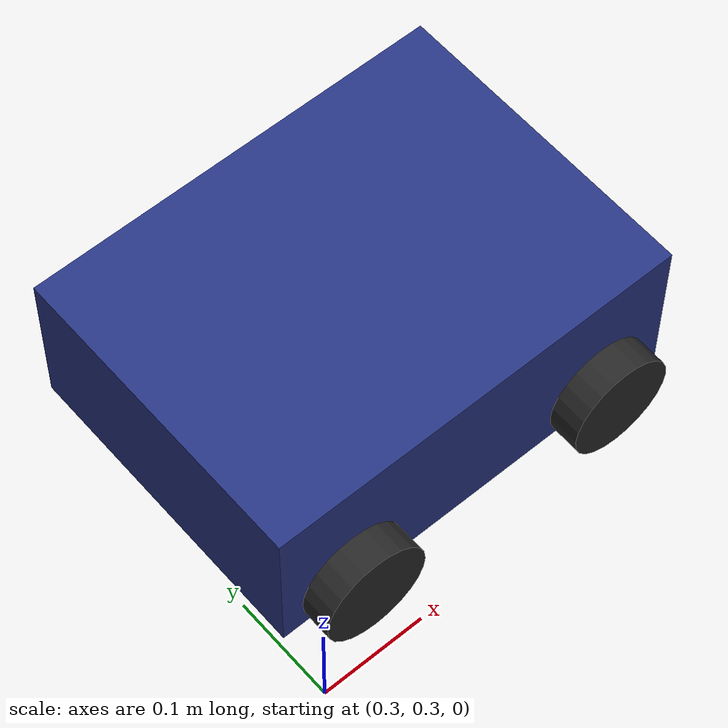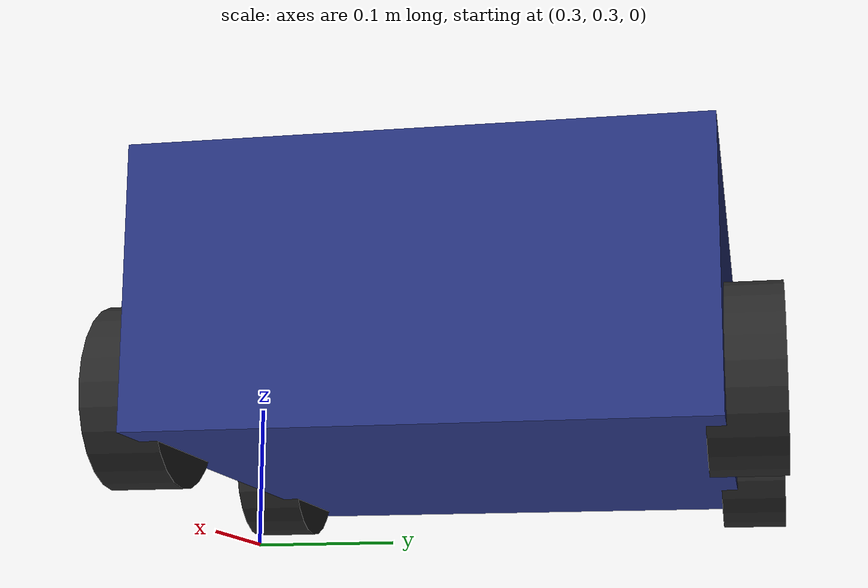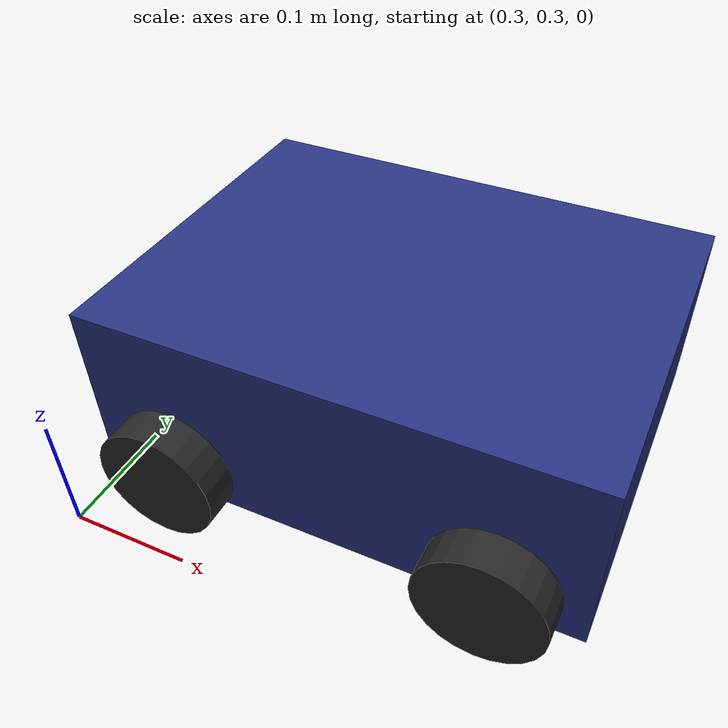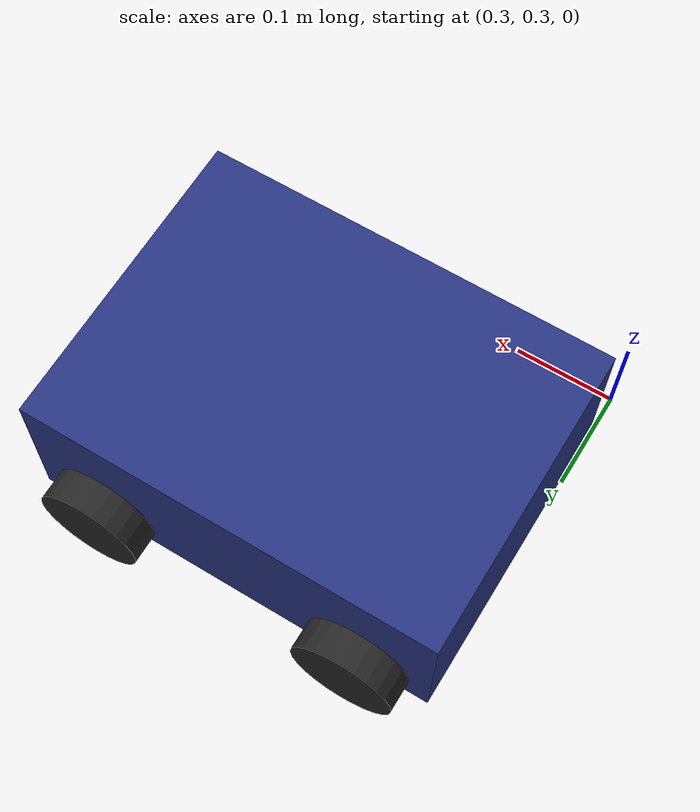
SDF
<?xml version="1.0"?>
<!-- Gazebo-side model for the pathfinder diff-drive car.
     Carries the DiffDrive plugin (cmd_vel -> wheel velocities).
     ROS-side TF/visualization is driven by urdf/car.urdf. -->
<sdf version="1.9">
  <model name="pathfinder_car">
    <!-- z = ground_top (0) + wheel_radius (0.05) - wheel_z_in_base (-0.045) = 0.095
         so the wheels rest cleanly on the ground from t=0 with no settling. -->
    <pose>0.5 0.5 0.095 0 0 0</pose>

    <link name="base_link">
      <inertial>
        <mass>2.0</mass>
        <inertia>
          <ixx>0.01875</ixx>
          <iyy>0.030416666666666668</iyy>
          <izz>0.041666666666666664</izz>
          <ixy>0</ixy>
          <ixz>0</ixz>
          <iyz>0</iyz>
        </inertia>
      </inertial>
      <visual name="base_visual">
        <geometry>
          <box>
            <size>0.40 0.30 0.15</size>
          </box>
        </geometry>
        <material>
          <ambient>0.1 0.15 0.4 1</ambient>
          <diffuse>0.15 0.2 0.5 1</diffuse>
          <specular>0.1 0.15 0.4 1</specular>
        </material>
      </visual>
      <collision name="base_collision">
        <geometry>
          <box>
            <size>0.40 0.30 0.15</size>
          </box>
        </geometry>
      </collision>
    </link>

    <link name="wheel_fl">
      <pose>0.13 0.16 -0.045 0 0 0</pose>
      <inertial>
        <mass>0.1</mass>
        <inertia>
          <ixx>0.00012500000000000003</ixx>
          <iyy>7.583333333333335e-05</iyy>
          <izz>7.583333333333335e-05</izz>
          <ixy>0</ixy>
          <ixz>0</ixz>
          <iyz>0</iyz>
        </inertia>
      </inertial>
      <visual name="wheel_fl_visual">
        <pose>0 0 0 1.5707963267948966 0 0</pose>
        <geometry>
          <cylinder>
            <radius>0.05</radius>
            <length>0.04</length>
          </cylinder>
        </geometry>
        <material>
          <ambient>0.15 0.15 0.15 1</ambient>
          <diffuse>0.15 0.15 0.15 1</diffuse>
        </material>
      </visual>
      <collision name="wheel_fl_collision">
        <pose>0 0 0 1.5707963267948966 0 0</pose>
        <geometry>
          <cylinder>
            <radius>0.05</radius>
            <length>0.04</length>
          </cylinder>
        </geometry>
        <surface>
          <friction>
            <ode>
              <mu>0.6</mu>
              <mu2>0.05</mu2>
            </ode>
          </friction>
        </surface>
      </collision>
    </link>

    <link name="wheel_fr">
      <pose>0.13 -0.16 -0.045 0 0 0</pose>
      <inertial>
        <mass>0.1</mass>
        <inertia>
          <ixx>0.00012500000000000003</ixx>
          <iyy>7.583333333333335e-05</iyy>
          <izz>7.583333333333335e-05</izz>
          <ixy>0</ixy>
          <ixz>0</ixz>
          <iyz>0</iyz>
        </inertia>
      </inertial>
      <visual name="wheel_fr_visual">
        <pose>0 0 0 1.5707963267948966 0 0</pose>
        <geometry>
          <cylinder>
            <radius>0.05</radius>
            <length>0.04</length>
          </cylinder>
        </geometry>
        <material>
          <ambient>0.15 0.15 0.15 1</ambient>
          <diffuse>0.15 0.15 0.15 1</diffuse>
        </material>
      </visual>
      <collision name="wheel_fr_collision">
        <pose>0 0 0 1.5707963267948966 0 0</pose>
        <geometry>
          <cylinder>
            <radius>0.05</radius>
            <length>0.04</length>
          </cylinder>
        </geometry>
        <surface>
          <friction>
            <ode>
              <mu>0.6</mu>
              <mu2>0.05</mu2>
            </ode>
          </friction>
        </surface>
      </collision>
    </link>

    <link name="wheel_rl">
      <pose>-0.13 0.16 -0.045 0 0 0</pose>
      <inertial>
        <mass>0.1</mass>
        <inertia>
          <ixx>0.00012500000000000003</ixx>
          <iyy>7.583333333333335e-05</iyy>
          <izz>7.583333333333335e-05</izz>
          <ixy>0</ixy>
          <ixz>0</ixz>
          <iyz>0</iyz>
        </inertia>
      </inertial>
      <visual name="wheel_rl_visual">
        <pose>0 0 0 1.5707963267948966 0 0</pose>
        <geometry>
          <cylinder>
            <radius>0.05</radius>
            <length>0.04</length>
          </cylinder>
        </geometry>
        <material>
          <ambient>0.15 0.15 0.15 1</ambient>
          <diffuse>0.15 0.15 0.15 1</diffuse>
        </material>
      </visual>
      <collision name="wheel_rl_collision">
        <pose>0 0 0 1.5707963267948966 0 0</pose>
        <geometry>
          <cylinder>
            <radius>0.05</radius>
            <length>0.04</length>
          </cylinder>
        </geometry>
        <surface>
          <friction>
            <ode>
              <mu>1.2</mu>
              <mu2>1.2</mu2>
            </ode>
          </friction>
        </surface>
      </collision>
    </link>

    <link name="wheel_rr">
      <pose>-0.13 -0.16 -0.045 0 0 0</pose>
      <inertial>
        <mass>0.1</mass>
        <inertia>
          <ixx>0.00012500000000000003</ixx>
          <iyy>7.583333333333335e-05</iyy>
          <izz>7.583333333333335e-05</izz>
          <ixy>0</ixy>
          <ixz>0</ixz>
          <iyz>0</iyz>
        </inertia>
      </inertial>
      <visual name="wheel_rr_visual">
        <pose>0 0 0 1.5707963267948966 0 0</pose>
        <geometry>
          <cylinder>
            <radius>0.05</radius>
            <length>0.04</length>
          </cylinder>
        </geometry>
        <material>
          <ambient>0.15 0.15 0.15 1</ambient>
          <diffuse>0.15 0.15 0.15 1</diffuse>
        </material>
      </visual>
      <collision name="wheel_rr_collision">
        <pose>0 0 0 1.5707963267948966 0 0</pose>
        <geometry>
          <cylinder>
            <radius>0.05</radius>
            <length>0.04</length>
          </cylinder>
        </geometry>
        <surface>
          <friction>
            <ode>
              <mu>1.2</mu>
              <mu2>1.2</mu2>
            </ode>
          </friction>
        </surface>
      </collision>
    </link>

    <joint name="fl_wheel_joint" type="revolute">
      <parent>base_link</parent>
      <child>wheel_fl</child>
      <axis>
        <xyz>0 1 0</xyz>
        <limit>
          <lower>-1e16</lower>
          <upper>1e16</upper>
        </limit>
        <dynamics>
          <damping>0.005</damping>
        </dynamics>
      </axis>
    </joint>

    <joint name="fr_wheel_joint" type="revolute">
      <parent>base_link</parent>
      <child>wheel_fr</child>
      <axis>
        <xyz>0 1 0</xyz>
        <limit>
          <lower>-1e16</lower>
          <upper>1e16</upper>
        </limit>
        <dynamics>
          <damping>0.005</damping>
        </dynamics>
      </axis>
    </joint>

    <joint name="rl_wheel_joint" type="revolute">
      <parent>base_link</parent>
      <child>wheel_rl</child>
      <axis>
        <xyz>0 1 0</xyz>
        <limit>
          <lower>-1e16</lower>
          <upper>1e16</upper>
        </limit>
        <dynamics>
          <damping>0.005</damping>
        </dynamics>
      </axis>
    </joint>

    <joint name="rr_wheel_joint" type="revolute">
      <parent>base_link</parent>
      <child>wheel_rr</child>
      <axis>
        <xyz>0 1 0</xyz>
        <limit>
          <lower>-1e16</lower>
          <upper>1e16</upper>
        </limit>
        <dynamics>
          <damping>0.005</damping>
        </dynamics>
      </axis>
    </joint>

    <!-- cmd_vel (gz.msgs.Twist) -> wheel velocities. Topic remapped to /cmd_vel.
         Diff-drive runs on the rear wheels; the low-mu2 fronts coast and steer. -->
    <plugin filename="gz-sim-diff-drive-system"
            name="gz::sim::systems::DiffDrive">
      <left_joint>rl_wheel_joint</left_joint>
      <right_joint>rr_wheel_joint</right_joint>
      <wheel_separation>0.32</wheel_separation>
      <wheel_radius>0.05</wheel_radius>
      <topic>cmd_vel</topic>
      <max_linear_acceleration>2.0</max_linear_acceleration>
      <max_angular_acceleration>2.0</max_angular_acceleration>
      <max_linear_velocity>1.0</max_linear_velocity>
      <max_angular_velocity>2.0</max_angular_velocity>
    </plugin>

    <!-- Publish pose updates on /model/pathfinder_car/pose for the ROS bridge. -->
    <plugin filename="gz-sim-pose-publisher-system"
            name="gz::sim::systems::PosePublisher">
      <publish_link_pose>false</publish_link_pose>
      <publish_visual_pose>false</publish_visual_pose>
      <publish_collision_pose>false</publish_collision_pose>
      <publish_nested_model_pose>false</publish_nested_model_pose>
      <publish_model_pose>true</publish_model_pose>
      <update_frequency>50</update_frequency>
    </plugin>
  </model>
</sdf>
